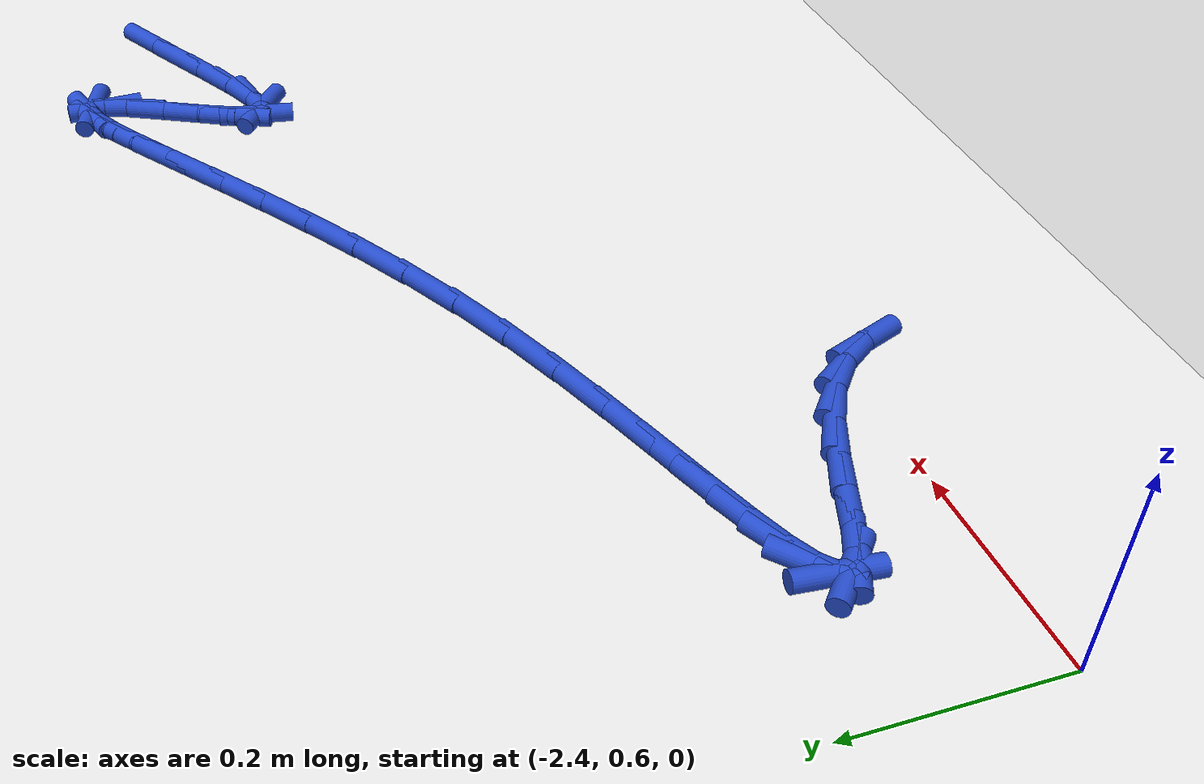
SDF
<sdf version="1.6">
 <world name="default">
  <model name="ground_plane">
   <static>1</static>
   <link name="link">
    <collision name="collision">
     <geometry><plane><normal>0 0 1</normal><size>100 100</size></plane></geometry>
     <surface><friction><ode><mu>100</mu><mu2>50</mu2></ode></friction></surface>
    </collision>
    <visual name="visual">
     <cast_shadows>0</cast_shadows>
     <geometry><plane><normal>0 0 1</normal><size>100 100</size></plane></geometry>
     <material>
      <script><uri>file://media/materials/scripts/gazebo.material</uri><name>Gazebo/WhiteGlow</name></script>
     </material>
    </visual>
   </link>
  </model>
  <model name="line">
   <link name="link_63">
    <pose>-1.2901505414157304 1.098994341221151 0.01 0 1.57 0.5047222750536078</pose>
    <collision name="collision">
     <geometry><cylinder><radius>0.01</radius><length>0.08</length></cylinder></geometry>
    </collision>
    <visual name="visual">
     <material>
      <script><name>Gazebo/Blue</name><uri>file://media/materials/scripts/gazebo.material</uri></script>
     </material>
     <geometry><cylinder><radius>0.01</radius><length>0.08</length></cylinder></geometry>
    </visual>
   </link>
   <link name="link_64">
    <pose>-1.3389362522559334 1.072042674488726 0.01 0 1.57 0.5162595644142666</pose>
    <collision name="collision">
     <geometry><cylinder><radius>0.01</radius><length>0.08</length></cylinder></geometry>
    </collision>
    <visual name="visual">
     <material>
      <script><name>Gazebo/Blue</name><uri>file://media/materials/scripts/gazebo.material</uri></script>
     </material>
     <geometry><cylinder><radius>0.01</radius><length>0.08</length></cylinder></geometry>
    </visual>
   </link>
   <link name="link_65">
    <pose>-1.3841971892139258 1.0463523055319557 0.01 0 1.57 0.4990466957613119</pose>
    <collision name="collision">
     <geometry><cylinder><radius>0.01</radius><length>0.08</length></cylinder></geometry>
    </collision>
    <visual name="visual">
     <material>
      <script><name>Gazebo/Blue</name><uri>file://media/materials/scripts/gazebo.material</uri></script>
     </material>
     <geometry><cylinder><radius>0.01</radius><length>0.08</length></cylinder></geometry>
    </visual>
   </link>
   <link name="link_66">
    <pose>-1.4237963647641723 1.0247681682661935 0.01 0 1.57 0.43126267578423383</pose>
    <collision name="collision">
     <geometry><cylinder><radius>0.01</radius><length>0.08</length></cylinder></geometry>
    </collision>
    <visual name="visual">
     <material>
      <script><name>Gazebo/Blue</name><uri>file://media/materials/scripts/gazebo.material</uri></script>
     </material>
     <geometry><cylinder><radius>0.01</radius><length>0.08</length></cylinder></geometry>
    </visual>
   </link>
   <link name="link_67">
    <pose>-1.4555967913811358 1.0101351966067935 0.01 0 1.57 0.21771217513708524</pose>
    <collision name="collision">
     <geometry><cylinder><radius>0.01</radius><length>0.08</length></cylinder></geometry>
    </collision>
    <visual name="visual">
     <material>
      <script><name>Gazebo/Blue</name><uri>file://media/materials/scripts/gazebo.material</uri></script>
     </material>
     <geometry><cylinder><radius>0.01</radius><length>0.08</length></cylinder></geometry>
    </visual>
   </link>
   <link name="link_68">
    <pose>-1.4774614815392806 1.0052983244691098 0.01 0 1.57 -0.6729067629164983</pose>
    <collision name="collision">
     <geometry><cylinder><radius>0.01</radius><length>0.08</length></cylinder></geometry>
    </collision>
    <visual name="visual">
     <material>
      <script><name>Gazebo/Blue</name><uri>file://media/materials/scripts/gazebo.material</uri></script>
     </material>
     <geometry><cylinder><radius>0.01</radius><length>0.08</length></cylinder></geometry>
    </visual>
   </link>
   <link name="link_69">
    <pose>-1.4872534477130694 1.0131024857684958 0.01 0 1.57 1.392757686864441</pose>
    <collision name="collision">
     <geometry><cylinder><radius>0.01</radius><length>0.08</length></cylinder></geometry>
    </collision>
    <visual name="visual">
     <material>
      <script><name>Gazebo/Blue</name><uri>file://media/materials/scripts/gazebo.material</uri></script>
     </material>
     <geometry><cylinder><radius>0.01</radius><length>0.08</length></cylinder></geometry>
    </visual>
   </link>
   <link name="link_70">
    <pose>-1.483125310184112 1.036043727693861 0.01 0 1.57 1.1606052238844655</pose>
    <collision name="collision">
     <geometry><cylinder><radius>0.01</radius><length>0.08</length></cylinder></geometry>
    </collision>
    <visual name="visual">
     <material>
      <script><name>Gazebo/Blue</name><uri>file://media/materials/scripts/gazebo.material</uri></script>
     </material>
     <geometry><cylinder><radius>0.01</radius><length>0.08</length></cylinder></geometry>
    </visual>
   </link>
   <link name="link_71">
    <pose>-1.4679584525032106 1.070921418351538 0.01 0 1.57 1.1074564694223479</pose>
    <collision name="collision">
     <geometry><cylinder><radius>0.01</radius><length>0.08</length></cylinder></geometry>
    </collision>
    <visual name="visual">
     <material>
      <script><name>Gazebo/Blue</name><uri>file://media/materials/scripts/gazebo.material</uri></script>
     </material>
     <geometry><cylinder><radius>0.01</radius><length>0.08</length></cylinder></geometry>
    </visual>
   </link>
   <link name="link_72">
    <pose>-1.4484879102108912 1.1098924818447067 0.01 0 1.57 1.1212957878696206</pose>
    <collision name="collision">
     <geometry><cylinder><radius>0.01</radius><length>0.08</length></cylinder></geometry>
    </collision>
    <visual name="visual">
     <material>
      <script><name>Gazebo/Blue</name><uri>file://media/materials/scripts/gazebo.material</uri></script>
     </material>
     <geometry><cylinder><radius>0.01</radius><length>0.08</length></cylinder></geometry>
    </visual>
   </link>
   <link name="link_73">
    <pose>-1.4315610035052702 1.1449785744224015 0.01 0 1.57 1.2330762547042402</pose>
    <collision name="collision">
     <geometry><cylinder><radius>0.01</radius><length>0.08</length></cylinder></geometry>
    </collision>
    <visual name="visual">
     <material>
      <script><name>Gazebo/Blue</name><uri>file://media/materials/scripts/gazebo.material</uri></script>
     </material>
     <geometry><cylinder><radius>0.01</radius><length>0.08</length></cylinder></geometry>
    </visual>
   </link>
   <link name="link_74">
    <pose>-1.4229451271656062 1.1695130874061914 0.01 0 1.57 -1.5355318231440795</pose>
    <collision name="collision">
     <geometry><cylinder><radius>0.01</radius><length>0.08</length></cylinder></geometry>
    </collision>
    <visual name="visual">
     <material>
      <script><name>Gazebo/Blue</name><uri>file://media/materials/scripts/gazebo.material</uri></script>
     </material>
     <geometry><cylinder><radius>0.01</radius><length>0.08</length></cylinder></geometry>
    </visual>
   </link>
   <link name="link_75">
    <pose>-1.4234170966059778 1.1828912362688928 0.01 0 1.57 -0.3618077404431063</pose>
    <collision name="collision">
     <geometry><cylinder><radius>0.01</radius><length>0.08</length></cylinder></geometry>
    </collision>
    <visual name="visual">
     <material>
      <script><name>Gazebo/Blue</name><uri>file://media/materials/scripts/gazebo.material</uri></script>
     </material>
     <geometry><cylinder><radius>0.01</radius><length>0.08</length></cylinder></geometry>
    </visual>
   </link>
   <link name="link_76">
    <pose>-1.4323131058436425 1.1862580921487742 0.01 0 1.57 0.3188928075998719</pose>
    <collision name="collision">
     <geometry><cylinder><radius>0.01</radius><length>0.08</length></cylinder></geometry>
    </collision>
    <visual name="visual">
     <material>
      <script><name>Gazebo/Blue</name><uri>file://media/materials/scripts/gazebo.material</uri></script>
     </material>
     <geometry><cylinder><radius>0.01</radius><length>0.08</length></cylinder></geometry>
    </visual>
   </link>
   <link name="link_77">
    <pose>-1.448969209948634 1.1807588949568195 0.01 0 1.57 0.5078803768849836</pose>
    <collision name="collision">
     <geometry><cylinder><radius>0.01</radius><length>0.08</length></cylinder></geometry>
    </collision>
    <visual name="visual">
     <material>
      <script><name>Gazebo/Blue</name><uri>file://media/materials/scripts/gazebo.material</uri></script>
     </material>
     <geometry><cylinder><radius>0.01</radius><length>0.08</length></cylinder></geometry>
    </visual>
   </link>
   <link name="link_78">
    <pose>-1.4727214639909867 1.1675388846040131 0.01 0 1.57 0.5804560048707502</pose>
    <collision name="collision">
     <geometry><cylinder><radius>0.01</radius><length>0.08</length></cylinder></geometry>
    </collision>
    <visual name="visual">
     <material>
      <script><name>Gazebo/Blue</name><uri>file://media/materials/scripts/gazebo.material</uri></script>
     </material>
     <geometry><cylinder><radius>0.01</radius><length>0.08</length></cylinder></geometry>
    </visual>
   </link>
   <link name="link_79">
    <pose>-1.5029059230407358 1.1477433010013398 0.01 0 1.57 0.6118267400083645</pose>
    <collision name="collision">
     <geometry><cylinder><radius>0.01</radius><length>0.08</length></cylinder></geometry>
    </collision>
    <visual name="visual">
     <material>
      <script><name>Gazebo/Blue</name><uri>file://media/materials/scripts/gazebo.material</uri></script>
     </material>
     <geometry><cylinder><radius>0.01</radius><length>0.08</length></cylinder></geometry>
    </visual>
   </link>
   <link name="link_80">
    <pose>-1.538858642167915 1.122517384059783 0.01 0 1.57 0.6232196771922001</pose>
    <collision name="collision">
     <geometry><cylinder><radius>0.01</radius><length>0.08</length></cylinder></geometry>
    </collision>
    <visual name="visual">
     <material>
      <script><name>Gazebo/Blue</name><uri>file://media/materials/scripts/gazebo.material</uri></script>
     </material>
     <geometry><cylinder><radius>0.01</radius><length>0.08</length></cylinder></geometry>
    </visual>
   </link>
   <link name="link_81">
    <pose>-1.5799156764425595 1.0930063736903277 0.01 0 1.57 0.6224685907503382</pose>
    <collision name="collision">
     <geometry><cylinder><radius>0.01</radius><length>0.08</length></cylinder></geometry>
    </collision>
    <visual name="visual">
     <material>
      <script><name>Gazebo/Blue</name><uri>file://media/materials/scripts/gazebo.material</uri></script>
     </material>
     <geometry><cylinder><radius>0.01</radius><length>0.08</length></cylinder></geometry>
    </visual>
   </link>
   <link name="link_82">
    <pose>-1.6254130809347027 1.0603555098039577 0.01 0 1.57 0.6128177023457698</pose>
    <collision name="collision">
     <geometry><cylinder><radius>0.01</radius><length>0.08</length></cylinder></geometry>
    </collision>
    <visual name="visual">
     <material>
      <script><name>Gazebo/Blue</name><uri>file://media/materials/scripts/gazebo.material</uri></script>
     </material>
     <geometry><cylinder><radius>0.01</radius><length>0.08</length></cylinder></geometry>
    </visual>
   </link>
   <link name="link_83">
    <pose>-1.6746869107143798 1.025710032311657 0.01 0 1.57 0.5955060504802149</pose>
    <collision name="collision">
     <geometry><cylinder><radius>0.01</radius><length>0.08</length></cylinder></geometry>
    </collision>
    <visual name="visual">
     <material>
      <script><name>Gazebo/Blue</name><uri>file://media/materials/scripts/gazebo.material</uri></script>
     </material>
     <geometry><cylinder><radius>0.01</radius><length>0.08</length></cylinder></geometry>
    </visual>
   </link>
   <link name="link_84">
    <pose>-1.727073220851625 0.9902151811244106 0.01 0 1.57 0.5706663551949732</pose>
    <collision name="collision">
     <geometry><cylinder><radius>0.01</radius><length>0.08</length></cylinder></geometry>
    </collision>
    <visual name="visual">
     <material>
      <script><name>Gazebo/Blue</name><uri>file://media/materials/scripts/gazebo.material</uri></script>
     </material>
     <geometry><cylinder><radius>0.01</radius><length>0.08</length></cylinder></geometry>
    </visual>
   </link>
   <link name="link_85">
    <pose>-1.7819080664164728 0.9550161961532024 0.01 0 1.57 0.5376385627900143</pose>
    <collision name="collision">
     <geometry><cylinder><radius>0.01</radius><length>0.08</length></cylinder></geometry>
    </collision>
    <visual name="visual">
     <material>
      <script><name>Gazebo/Blue</name><uri>file://media/materials/scripts/gazebo.material</uri></script>
     </material>
     <geometry><cylinder><radius>0.01</radius><length>0.08</length></cylinder></geometry>
    </visual>
   </link>
   <link name="link_86">
    <pose>-1.8385275024789576 0.9212583173090166 0.01 0 1.57 0.49502578314412743</pose>
    <collision name="collision">
     <geometry><cylinder><radius>0.01</radius><length>0.08</length></cylinder></geometry>
    </collision>
    <visual name="visual">
     <material>
      <script><name>Gazebo/Blue</name><uri>file://media/materials/scripts/gazebo.material</uri></script>
     </material>
     <geometry><cylinder><radius>0.01</radius><length>0.08</length></cylinder></geometry>
    </visual>
   </link>
   <link name="link_87">
    <pose>-1.8962675489463747 0.8900867073163254 0.01 0 1.57 0.44580093787427166</pose>
    <collision name="collision">
     <geometry><cylinder><radius>0.01</radius><length>0.08</length></cylinder></geometry>
    </collision>
    <visual name="visual">
     <material>
      <script><name>Gazebo/Blue</name><uri>file://media/materials/scripts/gazebo.material</uri></script>
     </material>
     <geometry><cylinder><radius>0.01</radius><length>0.08</length></cylinder></geometry>
    </visual>
   </link>
   <link name="link_88">
    <pose>-1.9543253426103389 0.862341663477446 0.01 0 1.57 0.40482675278376207</pose>
    <collision name="collision">
     <geometry><cylinder><radius>0.01</radius><length>0.08</length></cylinder></geometry>
    </collision>
    <visual name="visual">
     <material>
      <script><name>Gazebo/Blue</name><uri>file://media/materials/scripts/gazebo.material</uri></script>
     </material>
     <geometry><cylinder><radius>0.01</radius><length>0.08</length></cylinder></geometry>
    </visual>
   </link>
   <link name="link_89">
    <pose>-2.011443917123921 0.8378666711758556 0.01 0 1.57 0.3747224169739036</pose>
    <collision name="collision">
     <geometry><cylinder><radius>0.01</radius><length>0.08</length></cylinder></geometry>
    </collision>
    <visual name="visual">
     <material>
      <script><name>Gazebo/Blue</name><uri>file://media/materials/scripts/gazebo.material</uri></script>
     </material>
     <geometry><cylinder><radius>0.01</radius><length>0.08</length></cylinder></geometry>
    </visual>
   </link>
   <link name="link_90">
    <pose>-2.066273643430817 0.8163018098167536 0.01 0 1.57 0.35564890506425034</pose>
    <collision name="collision">
     <geometry><cylinder><radius>0.01</radius><length>0.08</length></cylinder></geometry>
    </collision>
    <visual name="visual">
     <material>
      <script><name>Gazebo/Blue</name><uri>file://media/materials/scripts/gazebo.material</uri></script>
     </material>
     <geometry><cylinder><radius>0.01</radius><length>0.08</length></cylinder></geometry>
    </visual>
   </link>
   <link name="link_91">
    <pose>-2.117464892474723 0.7972871588053402 0.01 0 1.57 0.34921477199627465</pose>
    <collision name="collision">
     <geometry><cylinder><radius>0.01</radius><length>0.08</length></cylinder></geometry>
    </collision>
    <visual name="visual">
     <material>
      <script><name>Gazebo/Blue</name><uri>file://media/materials/scripts/gazebo.material</uri></script>
     </material>
     <geometry><cylinder><radius>0.01</radius><length>0.08</length></cylinder></geometry>
    </visual>
   </link>
   <link name="link_92">
    <pose>-2.1636680351993354 0.7804627975468147 0.01 0 1.57 0.35974816278471106</pose>
    <collision name="collision">
     <geometry><cylinder><radius>0.01</radius><length>0.08</length></cylinder></geometry>
    </collision>
    <visual name="visual">
     <material>
      <script><name>Gazebo/Blue</name><uri>file://media/materials/scripts/gazebo.material</uri></script>
     </material>
     <geometry><cylinder><radius>0.01</radius><length>0.08</length></cylinder></geometry>
    </visual>
   </link>
   <link name="link_93">
    <pose>-2.20353344254835 0.7654688054463774 0.01 0 1.57 0.3978595285218474</pose>
    <collision name="collision">
     <geometry><cylinder><radius>0.01</radius><length>0.08</length></cylinder></geometry>
    </collision>
    <visual name="visual">
     <material>
      <script><name>Gazebo/Blue</name><uri>file://media/materials/scripts/gazebo.material</uri></script>
     </material>
     <geometry><cylinder><radius>0.01</radius><length>0.08</length></cylinder></geometry>
    </visual>
   </link>
   <link name="link_94">
    <pose>-2.2357114854654627 0.7519452619092273 0.01 0 1.57 0.49234708564635166</pose>
    <collision name="collision">
     <geometry><cylinder><radius>0.01</radius><length>0.08</length></cylinder></geometry>
    </collision>
    <visual name="visual">
     <material>
      <script><name>Gazebo/Blue</name><uri>file://media/materials/scripts/gazebo.material</uri></script>
     </material>
     <geometry><cylinder><radius>0.01</radius><length>0.08</length></cylinder></geometry>
    </visual>
   </link>
   <link name="link_95">
    <pose>-2.258852534894371 0.7395322463405646 0.01 0 1.57 0.740703940750969</pose>
    <collision name="collision">
     <geometry><cylinder><radius>0.01</radius><length>0.08</length></cylinder></geometry>
    </collision>
    <visual name="visual">
     <material>
      <script><name>Gazebo/Blue</name><uri>file://media/materials/scripts/gazebo.material</uri></script>
     </material>
     <geometry><cylinder><radius>0.01</radius><length>0.08</length></cylinder></geometry>
    </visual>
   </link>
   <link name="link_96">
    <pose>-2.2716069617787706 0.7278698381455887 0.01 0 1.57 1.4807107532331931</pose>
    <collision name="collision">
     <geometry><cylinder><radius>0.01</radius><length>0.08</length></cylinder></geometry>
    </collision>
    <visual name="visual">
     <material>
      <script><name>Gazebo/Blue</name><uri>file://media/materials/scripts/gazebo.material</uri></script>
     </material>
     <geometry><cylinder><radius>0.01</radius><length>0.08</length></cylinder></geometry>
    </visual>
   </link>
   <link name="link_97">
    <pose>-2.272625137062357 0.7165981167294995 0.01 0 1.57 -0.7500738714519721</pose>
    <collision name="collision">
     <geometry><cylinder><radius>0.01</radius><length>0.08</length></cylinder></geometry>
    </collision>
    <visual name="visual">
     <material>
      <script><name>Gazebo/Blue</name><uri>file://media/materials/scripts/gazebo.material</uri></script>
     </material>
     <geometry><cylinder><radius>0.01</radius><length>0.08</length></cylinder></geometry>
    </visual>
   </link>
   <link name="link_98">
    <pose>-2.2605603484498253 0.7053569375248582 0.01 0 1.57 -0.4357043392885262</pose>
    <collision name="collision">
     <geometry><cylinder><radius>0.01</radius><length>0.08</length></cylinder></geometry>
    </collision>
    <visual name="visual">
     <material>
      <script><name>Gazebo/Blue</name><uri>file://media/materials/scripts/gazebo.material</uri></script>
     </material>
     <geometry><cylinder><radius>0.01</radius><length>0.08</length></cylinder></geometry>
    </visual>
   </link>
   <link name="link_99">
    <pose>-2.2354737690561315 0.693678047068751 0.01 0 1.57 -0.35807904528247425</pose>
    <collision name="collision">
     <geometry><cylinder><radius>0.01</radius><length>0.08</length></cylinder></geometry>
    </collision>
    <visual name="visual">
     <material>
      <script><name>Gazebo/Blue</name><uri>file://media/materials/scripts/gazebo.material</uri></script>
     </material>
     <geometry><cylinder><radius>0.01</radius><length>0.08</length></cylinder></geometry>
    </visual>
   </link>
   <link name="link_100">
    <pose>-2.2010914027020956 0.6808117763818982 0.01 0 1.57 -0.36071234027373594</pose>
    <collision name="collision">
     <geometry><cylinder><radius>0.01</radius><length>0.08</length></cylinder></geometry>
    </collision>
    <visual name="visual">
     <material>
      <script><name>Gazebo/Blue</name><uri>file://media/materials/scripts/gazebo.material</uri></script>
     </material>
     <geometry><cylinder><radius>0.01</radius><length>0.08</length></cylinder></geometry>
    </visual>
   </link>
   <link name="link_101">
    <pose>-2.1617279775157483 0.6659632494432192 0.01 0 1.57 -0.4147698568456887</pose>
    <collision name="collision">
     <geometry><cylinder><radius>0.01</radius><length>0.08</length></cylinder></geometry>
    </collision>
    <visual name="visual">
     <material>
      <script><name>Gazebo/Blue</name><uri>file://media/materials/scripts/gazebo.material</uri></script>
     </material>
     <geometry><cylinder><radius>0.01</radius><length>0.08</length></cylinder></geometry>
    </visual>
   </link>
   <link name="link_102">
    <pose>-2.121698221625121 0.6483375902316337 0.01 0 1.57 -0.5275658680297748</pose>
    <collision name="collision">
     <geometry><cylinder><radius>0.01</radius><length>0.08</length></cylinder></geometry>
    </collision>
    <visual name="visual">
     <material>
      <script><name>Gazebo/Blue</name><uri>file://media/materials/scripts/gazebo.material</uri></script>
     </material>
     <geometry><cylinder><radius>0.01</radius><length>0.08</length></cylinder></geometry>
    </visual>
   </link>
   <link name="link_103">
    <pose>-2.0853168631582415 0.6271399227260612 0.01 0 1.57 -0.725944963421598</pose>
    <collision name="collision">
     <geometry><cylinder><radius>0.01</radius><length>0.08</length></cylinder></geometry>
    </collision>
    <visual name="visual">
     <material>
      <script><name>Gazebo/Blue</name><uri>file://media/materials/scripts/gazebo.material</uri></script>
     </material>
     <geometry><cylinder><radius>0.01</radius><length>0.08</length></cylinder></geometry>
    </visual>
   </link>
   <link name="link_104">
    <pose>-2.0565917143804486 0.6016422951644054 0.01 0 1.57 -0.9763673197648144</pose>
    <collision name="collision">
     <geometry><cylinder><radius>0.01</radius><length>0.08</length></cylinder></geometry>
    </collision>
    <visual name="visual">
     <material>
      <script><name>Gazebo/Blue</name><uri>file://media/materials/scripts/gazebo.material</uri></script>
     </material>
     <geometry><cylinder><radius>0.01</radius><length>0.08</length></cylinder></geometry>
    </visual>
   </link>
   <link name="link_105">
    <pose>-2.0364158893016535 0.5717959284766319 0.01 0 1.57 -1.215824873388104</pose>
    <collision name="collision">
     <geometry><cylinder><radius>0.01</radius><length>0.08</length></cylinder></geometry>
    </collision>
    <visual name="visual">
     <material>
      <script><name>Gazebo/Blue</name><uri>file://media/materials/scripts/gazebo.material</uri></script>
     </material>
     <geometry><cylinder><radius>0.01</radius><length>0.08</length></cylinder></geometry>
    </visual>
   </link>
  </model>
 </world>
</sdf>
